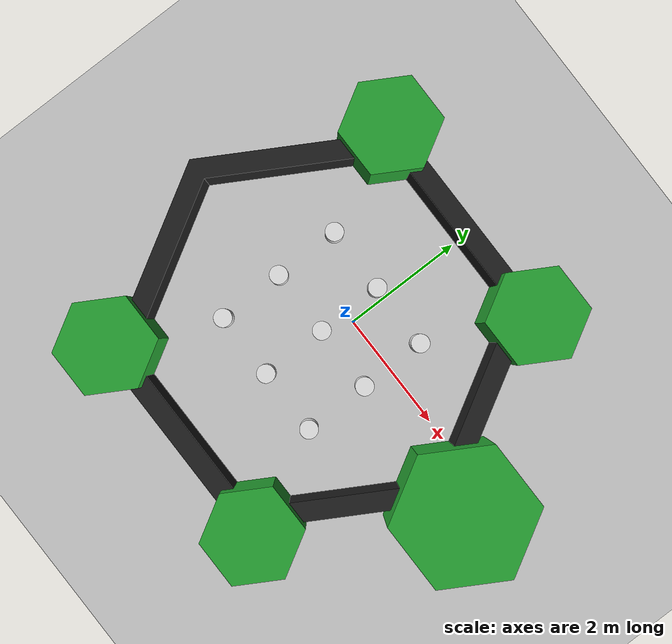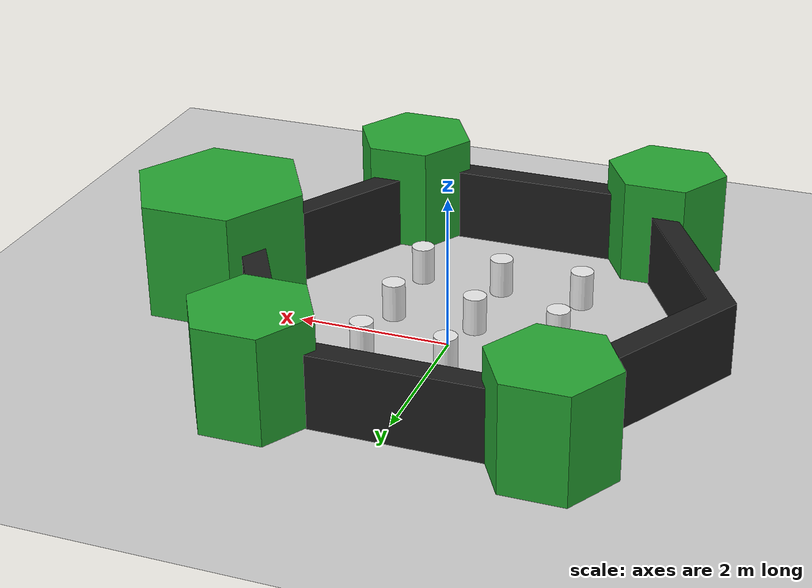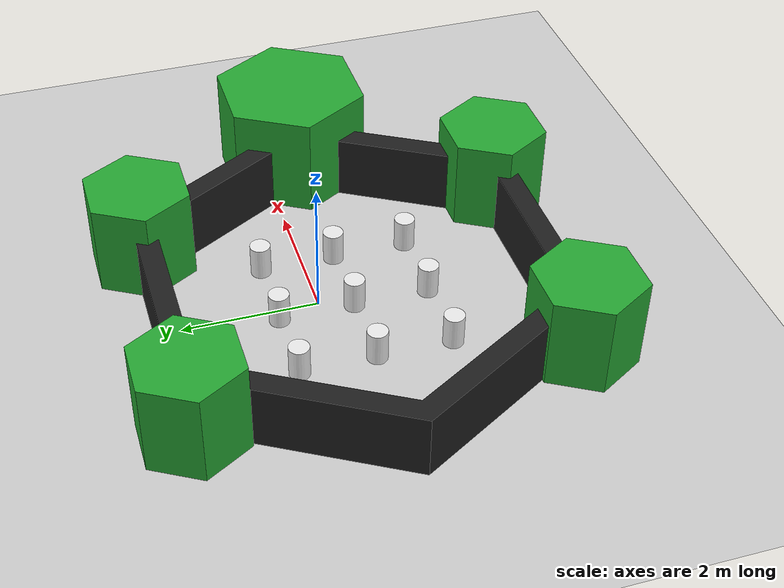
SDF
<sdf version="1.6">
 <world name="default">
  <light name="sun" type="directional">
   <pose>0 0 10 0 -0 0</pose>
   <diffuse>0.8 0.8 0.8 1</diffuse>
   <specular>0.2 0.2 0.2 1</specular>
   <attenuation>
    <range>1000</range>
    <constant>0.9</constant>
    <linear>0.01</linear>
    <quadratic>0.001</quadratic>
   </attenuation>
   <direction>-0.5 0.1 -0.9</direction>
  </light>
  <model name="ground_plane">
   <static>1</static>
   <link name="link">
    <collision name="collision">
     <geometry><plane><normal>0 0 1</normal><size>100 100</size></plane></geometry>
     <surface><friction><ode><mu>100</mu><mu2>50</mu2></ode></friction></surface>
    </collision>
    <visual name="visual">
     <cast_shadows>0</cast_shadows>
     <geometry><plane><normal>0 0 1</normal><size>100 100</size></plane></geometry>
     <material>
      <script><uri>file://media/materials/scripts/gazebo.material</uri><name>Gazebo/Grey</name></script>
     </material>
    </visual>
   </link>
  </model>
  <gravity>0 0 -9.8</gravity>
  <magnetic_field>6e-06 2.3e-05 -4.2e-05</magnetic_field>
  <atmosphere type="adiabatic"/>
  <physics name="default_physics" default="0" type="ode">
   <max_step_size>0.001</max_step_size>
   <real_time_factor>1</real_time_factor>
   <real_time_update_rate>1000</real_time_update_rate>
  </physics>
  <scene><ambient>0.4 0.4 0.4 1</ambient><background>0.7 0.7 0.7 1</background><shadows>1</shadows></scene>
  <audio><device>default</device></audio>
  <spherical_coordinates>
   <surface_model>EARTH_WGS84</surface_model>
   <latitude_deg>0</latitude_deg>
   <longitude_deg>0</longitude_deg>
   <elevation>0</elevation>
   <heading_deg>0</heading_deg>
  </spherical_coordinates>
  <model name="ros_symbol">
   <static>1</static>
   <link name="symbol">
    <collision name="one_one">
     <pose>-1.1 -1.1 0.25 0 -0 0</pose>
     <geometry><cylinder><radius>0.15</radius><length>0.5</length></cylinder></geometry>
    </collision>
    <visual name="one_one">
     <pose>-1.1 -1.1 0.25 0 -0 0</pose>
     <geometry><cylinder><radius>0.15</radius><length>0.5</length></cylinder></geometry>
     <material>
      <script><uri>file://media/materials/scripts/gazebo.material</uri><name>Gazebo/White</name></script>
     </material>
    </visual>
    <collision name="one_two">
     <pose>-1.1 0 0.25 0 -0 0</pose>
     <geometry><cylinder><radius>0.15</radius><length>0.5</length></cylinder></geometry>
    </collision>
    <visual name="one_two">
     <pose>-1.1 0 0.25 0 -0 0</pose>
     <geometry><cylinder><radius>0.15</radius><length>0.5</length></cylinder></geometry>
     <material>
      <script><uri>file://media/materials/scripts/gazebo.material</uri><name>Gazebo/White</name></script>
     </material>
    </visual>
    <collision name="one_three">
     <pose>-1.1 1.1 0.25 0 -0 0</pose>
     <geometry><cylinder><radius>0.15</radius><length>0.5</length></cylinder></geometry>
    </collision>
    <visual name="one_three">
     <pose>-1.1 1.1 0.25 0 -0 0</pose>
     <geometry><cylinder><radius>0.15</radius><length>0.5</length></cylinder></geometry>
     <material>
      <script><uri>file://media/materials/scripts/gazebo.material</uri><name>Gazebo/White</name></script>
     </material>
    </visual>
    <collision name="two_one">
     <pose>0 -1.1 0.25 0 -0 0</pose>
     <geometry><cylinder><radius>0.15</radius><length>0.5</length></cylinder></geometry>
    </collision>
    <visual name="two_one">
     <pose>0 -1.1 0.25 0 -0 0</pose>
     <geometry><cylinder><radius>0.15</radius><length>0.5</length></cylinder></geometry>
     <material>
      <script><uri>file://media/materials/scripts/gazebo.material</uri><name>Gazebo/White</name></script>
     </material>
    </visual>
    <collision name="two_two">
     <pose>0 0 0.25 0 -0 0</pose>
     <geometry><cylinder><radius>0.15</radius><length>0.5</length></cylinder></geometry>
    </collision>
    <visual name="two_two">
     <pose>0 0 0.25 0 -0 0</pose>
     <geometry><cylinder><radius>0.15</radius><length>0.5</length></cylinder></geometry>
     <material>
      <script><uri>file://media/materials/scripts/gazebo.material</uri><name>Gazebo/White</name></script>
     </material>
    </visual>
    <collision name="two_three">
     <pose>0 1.1 0.25 0 -0 0</pose>
     <geometry><cylinder><radius>0.15</radius><length>0.5</length></cylinder></geometry>
    </collision>
    <visual name="two_three">
     <pose>0 1.1 0.25 0 -0 0</pose>
     <geometry><cylinder><radius>0.15</radius><length>0.5</length></cylinder></geometry>
     <material>
      <script><uri>file://media/materials/scripts/gazebo.material</uri><name>Gazebo/White</name></script>
     </material>
    </visual>
    <collision name="three_one">
     <pose>1.1 -1.1 0.25 0 -0 0</pose>
     <geometry><cylinder><radius>0.15</radius><length>0.5</length></cylinder></geometry>
    </collision>
    <visual name="three_one">
     <pose>1.1 -1.1 0.25 0 -0 0</pose>
     <geometry><cylinder><radius>0.15</radius><length>0.5</length></cylinder></geometry>
     <material>
      <script><uri>file://media/materials/scripts/gazebo.material</uri><name>Gazebo/White</name></script>
     </material>
    </visual>
    <collision name="three_two">
     <pose>1.1 0 0.25 0 -0 0</pose>
     <geometry><cylinder><radius>0.15</radius><length>0.5</length></cylinder></geometry>
    </collision>
    <visual name="three_two">
     <pose>1.1 0 0.25 0 -0 0</pose>
     <geometry><cylinder><radius>0.15</radius><length>0.5</length></cylinder></geometry>
     <material>
      <script><uri>file://media/materials/scripts/gazebo.material</uri><name>Gazebo/White</name></script>
     </material>
    </visual>
    <collision name="three_three">
     <pose>1.1 1.1 0.25 0 -0 0</pose>
     <geometry><cylinder><radius>0.15</radius><length>0.5</length></cylinder></geometry>
    </collision>
    <visual name="three_three">
     <pose>1.1 1.1 0.25 0 -0 0</pose>
     <geometry><cylinder><radius>0.15</radius><length>0.5</length></cylinder></geometry>
     <material>
      <script><uri>file://media/materials/scripts/gazebo.material</uri><name>Gazebo/White</name></script>
     </material>
    </visual>
    <collision name="head">
     <pose>3.5 0 -0.5 0 -0 0</pose>
     <geometry>
      <mesh>
       <uri>/home/chang/catkin_ws/src/my_navigation_simulation/mybot_gazebo/models/turtlebot3_world/meshes/hexagon.dae</uri>
       <scale>0.8 0.8 0.8</scale>
      </mesh>
     </geometry>
    </collision>
    <visual name="head">
     <pose>3.5 0 -0.5 0 -0 0</pose>
     <geometry>
      <mesh>
       <uri>/home/chang/catkin_ws/src/my_navigation_simulation/mybot_gazebo/models/turtlebot3_world/meshes/hexagon.dae</uri>
       <scale>0.8 0.8 0.8</scale>
      </mesh>
     </geometry>
     <material>
      <script><uri>file://media/materials/scripts/gazebo.material</uri><name>Gazebo/Green</name></script>
     </material>
    </visual>
    <collision name="left_hand">
     <pose>1.8 2.7 0 0 -0 0</pose>
     <geometry>
      <mesh>
       <uri>/home/chang/catkin_ws/src/my_navigation_simulation/mybot_gazebo/models/turtlebot3_world/meshes/hexagon.dae</uri>
       <scale>0.55 0.55 0.55</scale>
      </mesh>
     </geometry>
    </collision>
    <visual name="left_hand">
     <pose>1.8 2.7 0 0 -0 0</pose>
     <geometry>
      <mesh>
       <uri>/home/chang/catkin_ws/src/my_navigation_simulation/mybot_gazebo/models/turtlebot3_world/meshes/hexagon.dae</uri>
       <scale>0.55 0.55 0.55</scale>
      </mesh>
     </geometry>
     <material>
      <script><uri>file://media/materials/scripts/gazebo.material</uri><name>Gazebo/Green</name></script>
     </material>
    </visual>
    <collision name="right_hand">
     <pose>1.8 -2.7 0 0 -0 0</pose>
     <geometry>
      <mesh>
       <uri>/home/chang/catkin_ws/src/my_navigation_simulation/mybot_gazebo/models/turtlebot3_world/meshes/hexagon.dae</uri>
       <scale>0.55 0.55 0.55</scale>
      </mesh>
     </geometry>
    </collision>
    <visual name="right_hand">
     <pose>1.8 -2.7 0 0 -0 0</pose>
     <geometry>
      <mesh>
       <uri>/home/chang/catkin_ws/src/my_navigation_simulation/mybot_gazebo/models/turtlebot3_world/meshes/hexagon.dae</uri>
       <scale>0.55 0.55 0.55</scale>
      </mesh>
     </geometry>
     <material>
      <script><uri>file://media/materials/scripts/gazebo.material</uri><name>Gazebo/Green</name></script>
     </material>
    </visual>
    <collision name="left_foot">
     <pose>-1.8 2.7 0 0 -0 0</pose>
     <geometry>
      <mesh>
       <uri>/home/chang/catkin_ws/src/my_navigation_simulation/mybot_gazebo/models/turtlebot3_world/meshes/hexagon.dae</uri>
       <scale>0.55 0.55 0.55</scale>
      </mesh>
     </geometry>
    </collision>
    <visual name="left_foot">
     <pose>-1.8 2.7 0 0 -0 0</pose>
     <geometry>
      <mesh>
       <uri>/home/chang/catkin_ws/src/my_navigation_simulation/mybot_gazebo/models/turtlebot3_world/meshes/hexagon.dae</uri>
       <scale>0.55 0.55 0.55</scale>
      </mesh>
     </geometry>
     <material>
      <script><uri>file://media/materials/scripts/gazebo.material</uri><name>Gazebo/Green</name></script>
     </material>
    </visual>
    <collision name="right_foot">
     <pose>-1.8 -2.7 0 0 -0 0</pose>
     <geometry>
      <mesh>
       <uri>/home/chang/catkin_ws/src/my_navigation_simulation/mybot_gazebo/models/turtlebot3_world/meshes/hexagon.dae</uri>
       <scale>0.55 0.55 0.55</scale>
      </mesh>
     </geometry>
    </collision>
    <visual name="right_foot">
     <pose>-1.8 -2.7 0 0 -0 0</pose>
     <geometry>
      <mesh>
       <uri>/home/chang/catkin_ws/src/my_navigation_simulation/mybot_gazebo/models/turtlebot3_world/meshes/hexagon.dae</uri>
       <scale>0.55 0.55 0.55</scale>
      </mesh>
     </geometry>
     <material>
      <script><uri>file://media/materials/scripts/gazebo.material</uri><name>Gazebo/Green</name></script>
     </material>
    </visual>
    <collision name="body">
     <pose>0 0 -0.3 0 0 -1.5708</pose>
     <geometry>
      <mesh>
       <uri>/home/chang/catkin_ws/src/my_navigation_simulation/mybot_gazebo/models/turtlebot3_world/meshes/wall.dae</uri>
       <scale>0.25 0.25 0.25</scale>
      </mesh>
     </geometry>
    </collision>
    <visual name="body">
     <pose>0 0 -0.3 0 0 -1.5708</pose>
     <geometry>
      <mesh>
       <uri>/home/chang/catkin_ws/src/my_navigation_simulation/mybot_gazebo/models/turtlebot3_world/meshes/wall.dae</uri>
       <scale>0.25 0.25 0.25</scale>
      </mesh>
     </geometry>
     <material>
      <script><uri>file://media/materials/scripts/gazebo.material</uri><name>Gazebo/FlatBlack</name></script>
     </material>
    </visual>
   </link>
   <pose>-0.188173 -0.4787 0 0 -0 0</pose>
  </model>
 </world>
</sdf>
